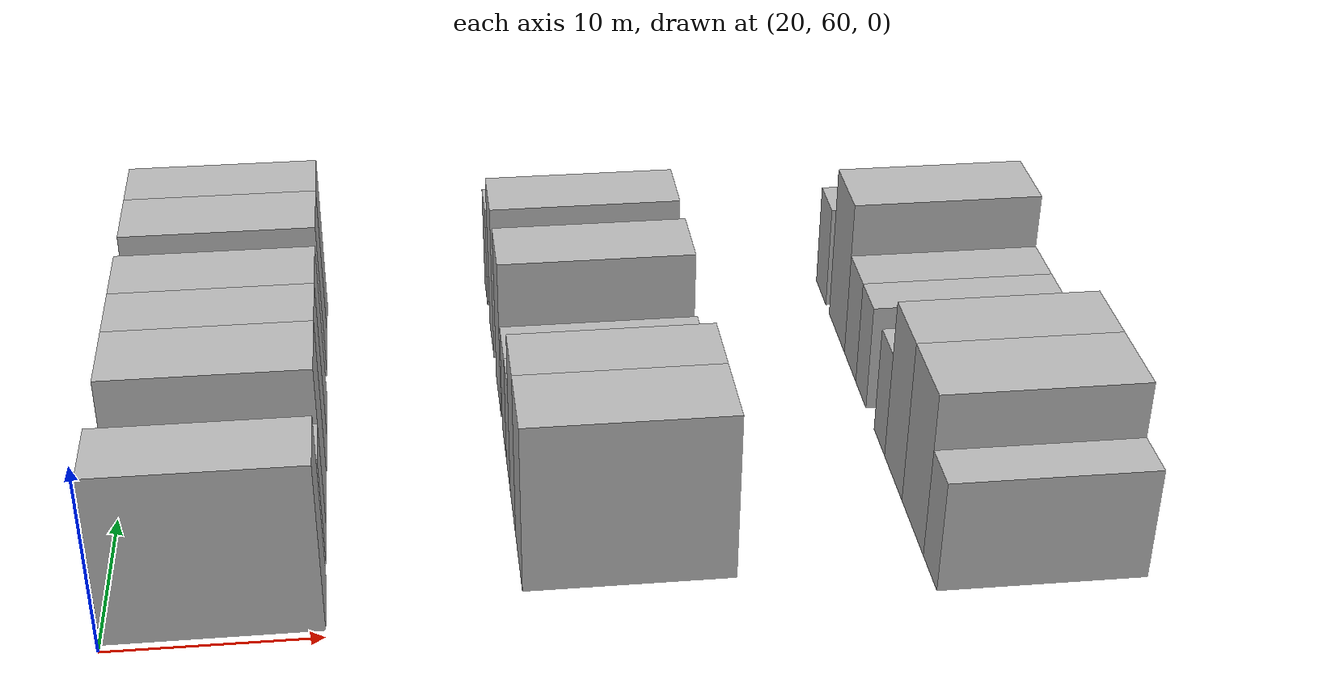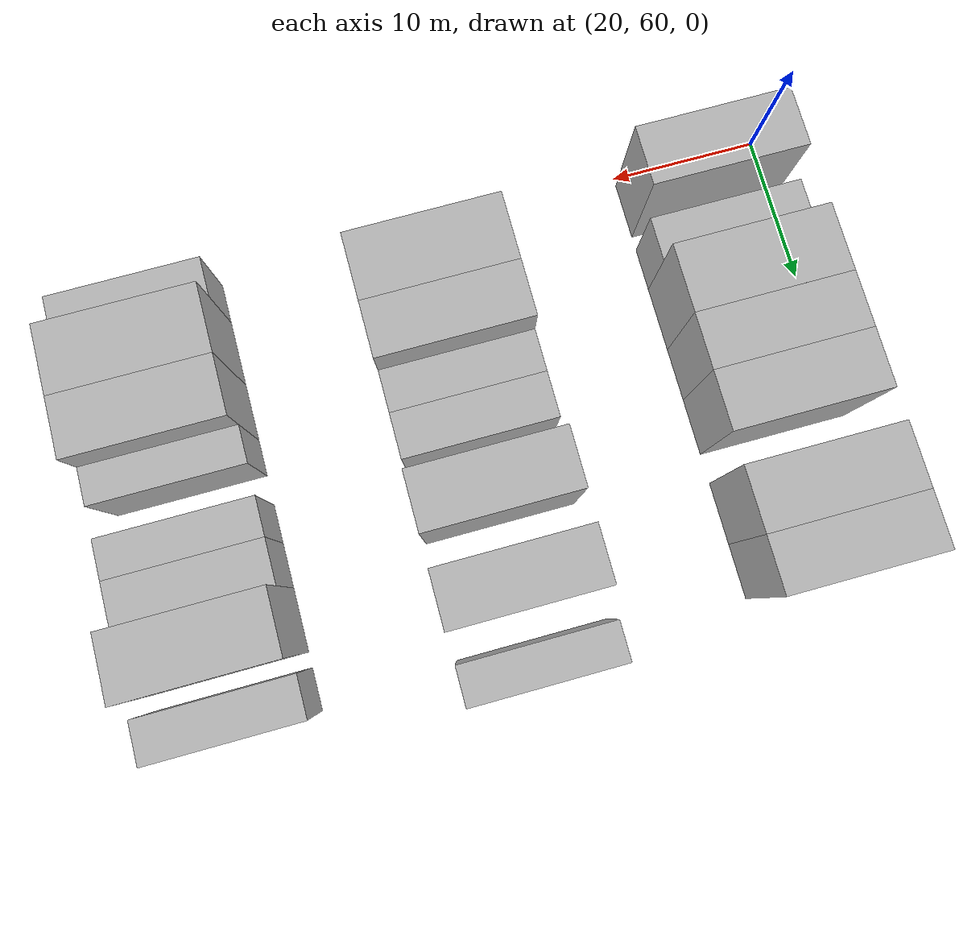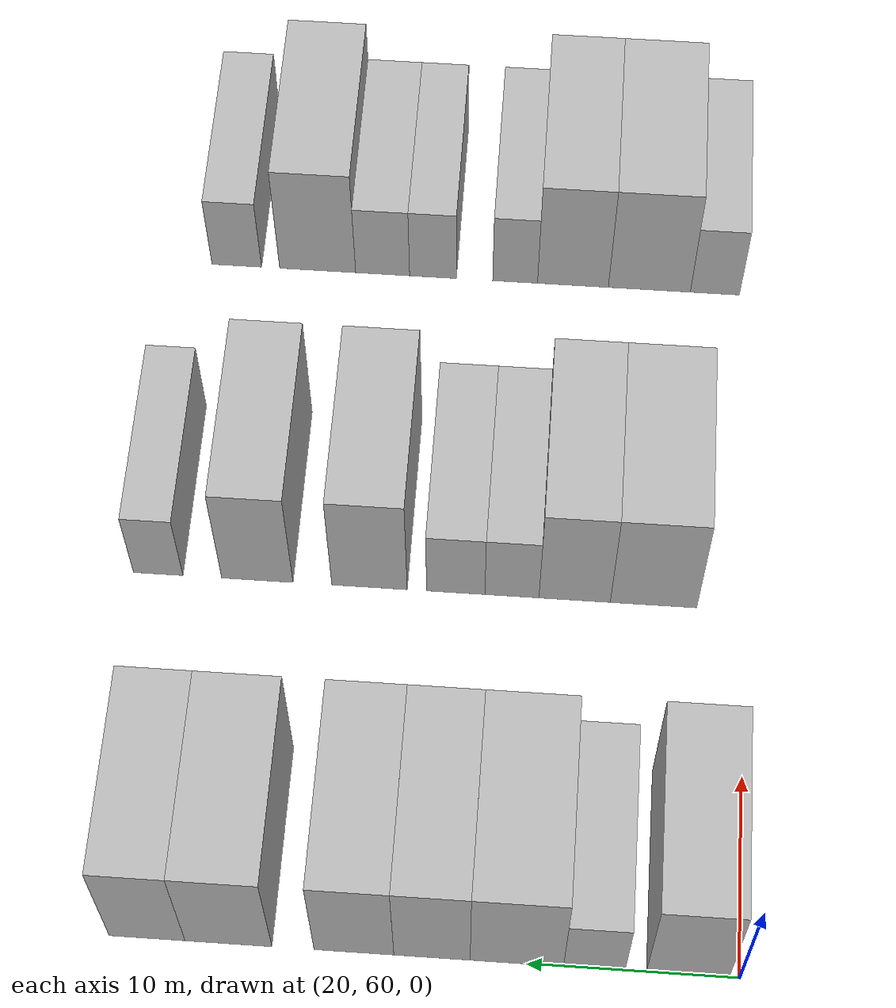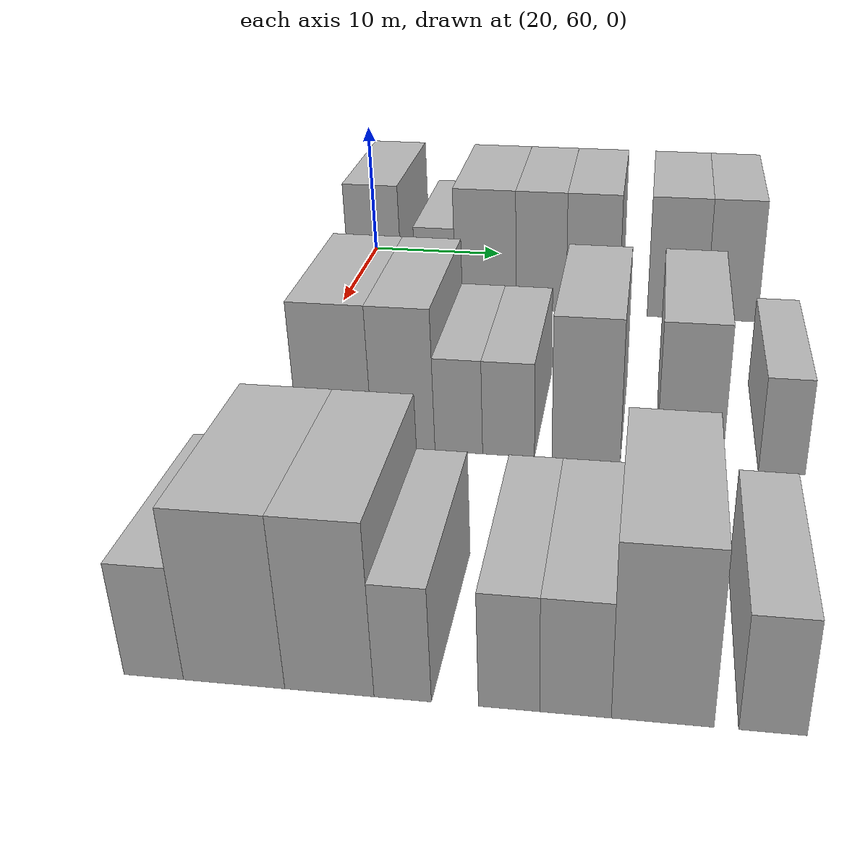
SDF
<sdf version="1.6">
 <world name="default">
  <model name="building_74">
   <static>1</static>
   <pose>25.0000 62.4412 0 0.000000 0.000000 0.000000</pose>
   <link name="link">
    <pose>0 0 4.50 0 0 0</pose>
    <collision name="collision"><geometry><box><size>10.0000 3.8860 9.0000</size></box></geometry></collision>
    <visual name="visual">
     <cast_shadows>0</cast_shadows>
     <geometry><box><size>10.0000 3.8860 9.0000</size></box></geometry>
     <material>
      <script>
       <uri>model://HANNAS_wall/materials/scripts</uri>
       <uri>model://HANNAS_wall/materials/textures</uri>
       <name>vrc/HANNAS_wall</name>
      </script>
     </material>
    </visual>
   </link>
  </model>
  <model name="building_75">
   <static>1</static>
   <pose>25.0000 66.8327 0 0.000000 0.000000 0.000000</pose>
   <link name="link">
    <pose>0 0 3.00 0 0 0</pose>
    <collision name="collision"><geometry><box><size>10.0000 2.8970 6.0000</size></box></geometry></collision>
    <visual name="visual">
     <cast_shadows>0</cast_shadows>
     <geometry><box><size>10.0000 2.8970 6.0000</size></box></geometry>
     <material>
      <script>
       <uri>model://HANNAS_wall/materials/scripts</uri>
       <uri>model://HANNAS_wall/materials/textures</uri>
       <name>vrc/HANNAS_wall</name>
      </script>
     </material>
    </visual>
   </link>
  </model>
  <model name="building_76">
   <static>1</static>
   <pose>25.0000 70.4810 0 0.000000 0.000000 0.000000</pose>
   <link name="link">
    <pose>0 0 4.50 0 0 0</pose>
    <collision name="collision"><geometry><box><size>10.0000 4.3996 9.0000</size></box></geometry></collision>
    <visual name="visual">
     <cast_shadows>0</cast_shadows>
     <geometry><box><size>10.0000 4.3996 9.0000</size></box></geometry>
     <material>
      <script>
       <uri>model://HANNAS_wall/materials/scripts</uri>
       <uri>model://HANNAS_wall/materials/textures</uri>
       <name>vrc/HANNAS_wall</name>
      </script>
     </material>
    </visual>
   </link>
  </model>
  <model name="building_77">
   <static>1</static>
   <pose>25.0000 74.4822 0 0.000000 0.000000 0.000000</pose>
   <link name="link">
    <pose>0 0 4.50 0 0 0</pose>
    <collision name="collision"><geometry><box><size>10.0000 3.6027 9.0000</size></box></geometry></collision>
    <visual name="visual">
     <cast_shadows>0</cast_shadows>
     <geometry><box><size>10.0000 3.6027 9.0000</size></box></geometry>
     <material>
      <script>
       <uri>model://HANNAS_wall/materials/scripts</uri>
       <uri>model://HANNAS_wall/materials/textures</uri>
       <name>vrc/HANNAS_wall</name>
      </script>
     </material>
    </visual>
   </link>
  </model>
  <model name="building_78">
   <static>1</static>
   <pose>25.0000 78.1736 0 0.000000 0.000000 0.000000</pose>
   <link name="link">
    <pose>0 0 4.50 0 0 0</pose>
    <collision name="collision"><geometry><box><size>10.0000 3.7800 9.0000</size></box></geometry></collision>
    <visual name="visual">
     <cast_shadows>0</cast_shadows>
     <geometry><box><size>10.0000 3.7800 9.0000</size></box></geometry>
     <material>
      <script>
       <uri>model://HANNAS_wall/materials/scripts</uri>
       <uri>model://HANNAS_wall/materials/textures</uri>
       <name>vrc/HANNAS_wall</name>
      </script>
     </material>
    </visual>
   </link>
  </model>
  <model name="building_79">
   <static>1</static>
   <pose>25.0000 84.1291 0 0.000000 0.000000 0.000000</pose>
   <link name="link">
    <pose>0 0 4.50 0 0 0</pose>
    <collision name="collision"><geometry><box><size>10.0000 4.1311 9.0000</size></box></geometry></collision>
    <visual name="visual">
     <cast_shadows>0</cast_shadows>
     <geometry><box><size>10.0000 4.1311 9.0000</size></box></geometry>
     <material>
      <script>
       <uri>model://HANNAS_wall/materials/scripts</uri>
       <uri>model://HANNAS_wall/materials/textures</uri>
       <name>vrc/HANNAS_wall</name>
      </script>
     </material>
    </visual>
   </link>
  </model>
  <model name="building_80">
   <static>1</static>
   <pose>25.0000 87.9999 0 0.000000 0.000000 0.000000</pose>
   <link name="link">
    <pose>0 0 4.50 0 0 0</pose>
    <collision name="collision"><geometry><box><size>10.0000 3.6105 9.0000</size></box></geometry></collision>
    <visual name="visual">
     <cast_shadows>0</cast_shadows>
     <geometry><box><size>10.0000 3.6105 9.0000</size></box></geometry>
     <material>
      <script>
       <uri>model://HANNAS_wall/materials/scripts</uri>
       <uri>model://HANNAS_wall/materials/textures</uri>
       <name>vrc/HANNAS_wall</name>
      </script>
     </material>
    </visual>
   </link>
  </model>
  <model name="building_188">
   <static>1</static>
   <pose>44.0000 64.5824 0 0.000000 0.000000 0.000000</pose>
   <link name="link">
    <pose>0 0 4.50 0 0 0</pose>
    <collision name="collision"><geometry><box><size>10.0000 4.3955 9.0000</size></box></geometry></collision>
    <visual name="visual">
     <cast_shadows>0</cast_shadows>
     <geometry><box><size>10.0000 4.3955 9.0000</size></box></geometry>
     <material>
      <script>
       <uri>model://HANNAS_wall/materials/scripts</uri>
       <uri>model://HANNAS_wall/materials/textures</uri>
       <name>vrc/HANNAS_wall</name>
      </script>
     </material>
    </visual>
   </link>
  </model>
  <model name="building_189">
   <static>1</static>
   <pose>44.0000 68.6004 0 0.000000 0.000000 0.000000</pose>
   <link name="link">
    <pose>0 0 4.50 0 0 0</pose>
    <collision name="collision"><geometry><box><size>10.0000 3.6405 9.0000</size></box></geometry></collision>
    <visual name="visual">
     <cast_shadows>0</cast_shadows>
     <geometry><box><size>10.0000 3.6405 9.0000</size></box></geometry>
     <material>
      <script>
       <uri>model://HANNAS_wall/materials/scripts</uri>
       <uri>model://HANNAS_wall/materials/textures</uri>
       <name>vrc/HANNAS_wall</name>
      </script>
     </material>
    </visual>
   </link>
  </model>
  <model name="building_190">
   <static>1</static>
   <pose>44.0000 71.7989 0 0.000000 0.000000 0.000000</pose>
   <link name="link">
    <pose>0 0 3.00 0 0 0</pose>
    <collision name="collision"><geometry><box><size>10.0000 2.7565 6.0000</size></box></geometry></collision>
    <visual name="visual">
     <cast_shadows>0</cast_shadows>
     <geometry><box><size>10.0000 2.7565 6.0000</size></box></geometry>
     <material>
      <script>
       <uri>model://HANNAS_wall/materials/scripts</uri>
       <uri>model://HANNAS_wall/materials/textures</uri>
       <name>vrc/HANNAS_wall</name>
      </script>
     </material>
    </visual>
   </link>
  </model>
  <model name="building_191">
   <static>1</static>
   <pose>44.0000 74.6646 0 0.000000 0.000000 0.000000</pose>
   <link name="link">
    <pose>0 0 3.00 0 0 0</pose>
    <collision name="collision"><geometry><box><size>10.0000 2.9750 6.0000</size></box></geometry></collision>
    <visual name="visual">
     <cast_shadows>0</cast_shadows>
     <geometry><box><size>10.0000 2.9750 6.0000</size></box></geometry>
     <material>
      <script>
       <uri>model://HANNAS_wall/materials/scripts</uri>
       <uri>model://HANNAS_wall/materials/textures</uri>
       <name>vrc/HANNAS_wall</name>
      </script>
     </material>
    </visual>
   </link>
  </model>
  <model name="building_192">
   <static>1</static>
   <pose>44.0000 79.0824 0 0.000000 0.000000 0.000000</pose>
   <link name="link">
    <pose>0 0 4.50 0 0 0</pose>
    <collision name="collision"><geometry><box><size>10.0000 3.8605 9.0000</size></box></geometry></collision>
    <visual name="visual">
     <cast_shadows>0</cast_shadows>
     <geometry><box><size>10.0000 3.8605 9.0000</size></box></geometry>
     <material>
      <script>
       <uri>model://HANNAS_wall/materials/scripts</uri>
       <uri>model://HANNAS_wall/materials/textures</uri>
       <name>vrc/HANNAS_wall</name>
      </script>
     </material>
    </visual>
   </link>
  </model>
  <model name="building_193">
   <static>1</static>
   <pose>44.0000 84.8441 0 0.000000 0.000000 0.000000</pose>
   <link name="link">
    <pose>0 0 4.50 0 0 0</pose>
    <collision name="collision"><geometry><box><size>10.0000 3.6630 9.0000</size></box></geometry></collision>
    <visual name="visual">
     <cast_shadows>0</cast_shadows>
     <geometry><box><size>10.0000 3.6630 9.0000</size></box></geometry>
     <material>
      <script>
       <uri>model://HANNAS_wall/materials/scripts</uri>
       <uri>model://HANNAS_wall/materials/textures</uri>
       <name>vrc/HANNAS_wall</name>
      </script>
     </material>
    </visual>
   </link>
  </model>
  <model name="building_194">
   <static>1</static>
   <pose>44.0000 89.9505 0 0.000000 0.000000 0.000000</pose>
   <link name="link">
    <pose>0 0 3.00 0 0 0</pose>
    <collision name="collision"><geometry><box><size>10.0000 2.5496 6.0000</size></box></geometry></collision>
    <visual name="visual">
     <cast_shadows>0</cast_shadows>
     <geometry><box><size>10.0000 2.5496 6.0000</size></box></geometry>
     <material>
      <script>
       <uri>model://HANNAS_wall/materials/scripts</uri>
       <uri>model://HANNAS_wall/materials/textures</uri>
       <name>vrc/HANNAS_wall</name>
      </script>
     </material>
    </visual>
   </link>
  </model>
  <model name="building_306">
   <static>1</static>
   <pose>63.0000 61.7534 0 0.000000 0.000000 0.000000</pose>
   <link name="link">
    <pose>0 0 3.00 0 0 0</pose>
    <collision name="collision"><geometry><box><size>10.0000 2.6804 6.0000</size></box></geometry></collision>
    <visual name="visual">
     <cast_shadows>0</cast_shadows>
     <geometry><box><size>10.0000 2.6804 6.0000</size></box></geometry>
     <material>
      <script>
       <uri>model://HANNAS_wall/materials/scripts</uri>
       <uri>model://HANNAS_wall/materials/textures</uri>
       <name>vrc/HANNAS_wall</name>
      </script>
     </material>
    </visual>
   </link>
  </model>
  <model name="building_307">
   <static>1</static>
   <pose>63.0000 65.3394 0 0.000000 0.000000 0.000000</pose>
   <link name="link">
    <pose>0 0 4.50 0 0 0</pose>
    <collision name="collision"><geometry><box><size>10.0000 4.4916 9.0000</size></box></geometry></collision>
    <visual name="visual">
     <cast_shadows>0</cast_shadows>
     <geometry><box><size>10.0000 4.4916 9.0000</size></box></geometry>
     <material>
      <script>
       <uri>model://HANNAS_wall/materials/scripts</uri>
       <uri>model://HANNAS_wall/materials/textures</uri>
       <name>vrc/HANNAS_wall</name>
      </script>
     </material>
    </visual>
   </link>
  </model>
  <model name="building_308">
   <static>1</static>
   <pose>63.0000 69.5299 0 0.000000 0.000000 0.000000</pose>
   <link name="link">
    <pose>0 0 4.50 0 0 0</pose>
    <collision name="collision"><geometry><box><size>10.0000 3.8896 9.0000</size></box></geometry></collision>
    <visual name="visual">
     <cast_shadows>0</cast_shadows>
     <geometry><box><size>10.0000 3.8896 9.0000</size></box></geometry>
     <material>
      <script>
       <uri>model://HANNAS_wall/materials/scripts</uri>
       <uri>model://HANNAS_wall/materials/textures</uri>
       <name>vrc/HANNAS_wall</name>
      </script>
     </material>
    </visual>
   </link>
  </model>
  <model name="building_309">
   <static>1</static>
   <pose>63.0000 72.7063 0 0.000000 0.000000 0.000000</pose>
   <link name="link">
    <pose>0 0 3.00 0 0 0</pose>
    <collision name="collision"><geometry><box><size>10.0000 2.4631 6.0000</size></box></geometry></collision>
    <visual name="visual">
     <cast_shadows>0</cast_shadows>
     <geometry><box><size>10.0000 2.4631 6.0000</size></box></geometry>
     <material>
      <script>
       <uri>model://HANNAS_wall/materials/scripts</uri>
       <uri>model://HANNAS_wall/materials/textures</uri>
       <name>vrc/HANNAS_wall</name>
      </script>
     </material>
    </visual>
   </link>
  </model>
  <model name="building_310">
   <static>1</static>
   <pose>63.0000 77.2254 0 0.000000 0.000000 0.000000</pose>
   <link name="link">
    <pose>0 0 3.00 0 0 0</pose>
    <collision name="collision"><geometry><box><size>10.0000 2.5750 6.0000</size></box></geometry></collision>
    <visual name="visual">
     <cast_shadows>0</cast_shadows>
     <geometry><box><size>10.0000 2.5750 6.0000</size></box></geometry>
     <material>
      <script>
       <uri>model://HANNAS_wall/materials/scripts</uri>
       <uri>model://HANNAS_wall/materials/textures</uri>
       <name>vrc/HANNAS_wall</name>
      </script>
     </material>
    </visual>
   </link>
  </model>
  <model name="building_311">
   <static>1</static>
   <pose>63.0000 80.0028 0 0.000000 0.000000 0.000000</pose>
   <link name="link">
    <pose>0 0 3.00 0 0 0</pose>
    <collision name="collision"><geometry><box><size>10.0000 2.9799 6.0000</size></box></geometry></collision>
    <visual name="visual">
     <cast_shadows>0</cast_shadows>
     <geometry><box><size>10.0000 2.9799 6.0000</size></box></geometry>
     <material>
      <script>
       <uri>model://HANNAS_wall/materials/scripts</uri>
       <uri>model://HANNAS_wall/materials/textures</uri>
       <name>vrc/HANNAS_wall</name>
      </script>
     </material>
    </visual>
   </link>
  </model>
  <model name="building_312">
   <static>1</static>
   <pose>63.0000 83.5930 0 0.000000 0.000000 0.000000</pose>
   <link name="link">
    <pose>0 0 4.50 0 0 0</pose>
    <collision name="collision"><geometry><box><size>10.0000 4.2005 9.0000</size></box></geometry></collision>
    <visual name="visual">
     <cast_shadows>0</cast_shadows>
     <geometry><box><size>10.0000 4.2005 9.0000</size></box></geometry>
     <material>
      <script>
       <uri>model://HANNAS_wall/materials/scripts</uri>
       <uri>model://HANNAS_wall/materials/textures</uri>
       <name>vrc/HANNAS_wall</name>
      </script>
     </material>
    </visual>
   </link>
  </model>
  <model name="building_313">
   <static>1</static>
   <pose>63.0000 88.0673 0 0.000000 0.000000 0.000000</pose>
   <link name="link">
    <pose>0 0 3.00 0 0 0</pose>
    <collision name="collision"><geometry><box><size>10.0000 2.7481 6.0000</size></box></geometry></collision>
    <visual name="visual">
     <cast_shadows>0</cast_shadows>
     <geometry><box><size>10.0000 2.7481 6.0000</size></box></geometry>
     <material>
      <script>
       <uri>model://HANNAS_wall/materials/scripts</uri>
       <uri>model://HANNAS_wall/materials/textures</uri>
       <name>vrc/HANNAS_wall</name>
      </script>
     </material>
    </visual>
   </link>
  </model>
 </world>
</sdf>
